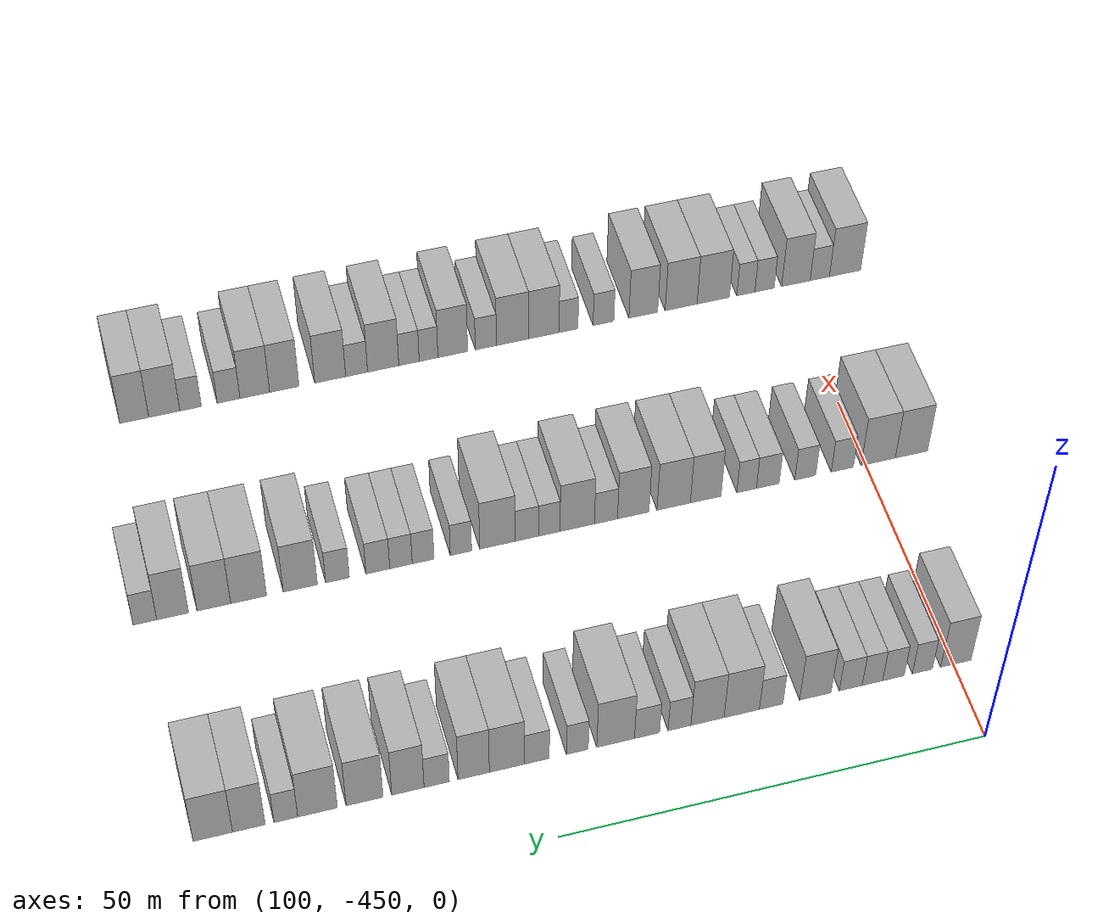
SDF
<sdf version="1.6">
 <world name="default">
  <model name="building_684">
   <static>1</static>
   <pose>115.0000 -450.2752 0 0.000000 0.000000 0.000000</pose>
   <link name="link">
    <pose>0 0 4.50 0 0 0</pose>
    <collision name="collision"><geometry><box><size>10.0000 3.7055 9.0000</size></box></geometry></collision>
    <visual name="visual">
     <cast_shadows>0</cast_shadows>
     <geometry><box><size>10.0000 3.7055 9.0000</size></box></geometry>
     <material>
      <script>
       <uri>model://HANNAS_wall/materials/scripts</uri>
       <uri>model://HANNAS_wall/materials/textures</uri>
       <name>vrc/HANNAS_wall</name>
      </script>
     </material>
    </visual>
   </link>
  </model>
  <model name="building_685">
   <static>1</static>
   <pose>115.0000 -446.1990 0 0.000000 0.000000 0.000000</pose>
   <link name="link">
    <pose>0 0 3.00 0 0 0</pose>
    <collision name="collision"><geometry><box><size>10.0000 2.4470 6.0000</size></box></geometry></collision>
    <visual name="visual">
     <cast_shadows>0</cast_shadows>
     <geometry><box><size>10.0000 2.4470 6.0000</size></box></geometry>
     <material>
      <script>
       <uri>model://HANNAS_wall/materials/scripts</uri>
       <uri>model://HANNAS_wall/materials/textures</uri>
       <name>vrc/HANNAS_wall</name>
      </script>
     </material>
    </visual>
   </link>
  </model>
  <model name="building_686">
   <static>1</static>
   <pose>115.0000 -442.6727 0 0.000000 0.000000 0.000000</pose>
   <link name="link">
    <pose>0 0 3.00 0 0 0</pose>
    <collision name="collision"><geometry><box><size>10.0000 2.6057 6.0000</size></box></geometry></collision>
    <visual name="visual">
     <cast_shadows>0</cast_shadows>
     <geometry><box><size>10.0000 2.6057 6.0000</size></box></geometry>
     <material>
      <script>
       <uri>model://HANNAS_wall/materials/scripts</uri>
       <uri>model://HANNAS_wall/materials/textures</uri>
       <name>vrc/HANNAS_wall</name>
      </script>
     </material>
    </visual>
   </link>
  </model>
  <model name="building_687">
   <static>1</static>
   <pose>115.0000 -440.1237 0 0.000000 0.000000 0.000000</pose>
   <link name="link">
    <pose>0 0 3.00 0 0 0</pose>
    <collision name="collision"><geometry><box><size>10.0000 2.4924 6.0000</size></box></geometry></collision>
    <visual name="visual">
     <cast_shadows>0</cast_shadows>
     <geometry><box><size>10.0000 2.4924 6.0000</size></box></geometry>
     <material>
      <script>
       <uri>model://HANNAS_wall/materials/scripts</uri>
       <uri>model://HANNAS_wall/materials/textures</uri>
       <name>vrc/HANNAS_wall</name>
      </script>
     </material>
    </visual>
   </link>
  </model>
  <model name="building_688">
   <static>1</static>
   <pose>115.0000 -437.4961 0 0.000000 0.000000 0.000000</pose>
   <link name="link">
    <pose>0 0 3.00 0 0 0</pose>
    <collision name="collision"><geometry><box><size>10.0000 2.7628 6.0000</size></box></geometry></collision>
    <visual name="visual">
     <cast_shadows>0</cast_shadows>
     <geometry><box><size>10.0000 2.7628 6.0000</size></box></geometry>
     <material>
      <script>
       <uri>model://HANNAS_wall/materials/scripts</uri>
       <uri>model://HANNAS_wall/materials/textures</uri>
       <name>vrc/HANNAS_wall</name>
      </script>
     </material>
    </visual>
   </link>
  </model>
  <model name="building_689">
   <static>1</static>
   <pose>115.0000 -433.2205 0 0.000000 0.000000 0.000000</pose>
   <link name="link">
    <pose>0 0 4.50 0 0 0</pose>
    <collision name="collision"><geometry><box><size>10.0000 3.7883 9.0000</size></box></geometry></collision>
    <visual name="visual">
     <cast_shadows>0</cast_shadows>
     <geometry><box><size>10.0000 3.7883 9.0000</size></box></geometry>
     <material>
      <script>
       <uri>model://HANNAS_wall/materials/scripts</uri>
       <uri>model://HANNAS_wall/materials/textures</uri>
       <name>vrc/HANNAS_wall</name>
      </script>
     </material>
    </visual>
   </link>
  </model>
  <model name="building_690">
   <static>1</static>
   <pose>115.0000 -427.9189 0 0.000000 0.000000 0.000000</pose>
   <link name="link">
    <pose>0 0 3.00 0 0 0</pose>
    <collision name="collision"><geometry><box><size>10.0000 2.8150 6.0000</size></box></geometry></collision>
    <visual name="visual">
     <cast_shadows>0</cast_shadows>
     <geometry><box><size>10.0000 2.8150 6.0000</size></box></geometry>
     <material>
      <script>
       <uri>model://HANNAS_wall/materials/scripts</uri>
       <uri>model://HANNAS_wall/materials/textures</uri>
       <name>vrc/HANNAS_wall</name>
      </script>
     </material>
    </visual>
   </link>
  </model>
  <model name="building_691">
   <static>1</static>
   <pose>115.0000 -424.4064 0 0.000000 0.000000 0.000000</pose>
   <link name="link">
    <pose>0 0 4.50 0 0 0</pose>
    <collision name="collision"><geometry><box><size>10.0000 4.2099 9.0000</size></box></geometry></collision>
    <visual name="visual">
     <cast_shadows>0</cast_shadows>
     <geometry><box><size>10.0000 4.2099 9.0000</size></box></geometry>
     <material>
      <script>
       <uri>model://HANNAS_wall/materials/scripts</uri>
       <uri>model://HANNAS_wall/materials/textures</uri>
       <name>vrc/HANNAS_wall</name>
      </script>
     </material>
    </visual>
   </link>
  </model>
  <model name="building_692">
   <static>1</static>
   <pose>115.0000 -420.3327 0 0.000000 0.000000 0.000000</pose>
   <link name="link">
    <pose>0 0 4.50 0 0 0</pose>
    <collision name="collision"><geometry><box><size>10.0000 3.9375 9.0000</size></box></geometry></collision>
    <visual name="visual">
     <cast_shadows>0</cast_shadows>
     <geometry><box><size>10.0000 3.9375 9.0000</size></box></geometry>
     <material>
      <script>
       <uri>model://HANNAS_wall/materials/scripts</uri>
       <uri>model://HANNAS_wall/materials/textures</uri>
       <name>vrc/HANNAS_wall</name>
      </script>
     </material>
    </visual>
   </link>
  </model>
  <model name="building_693">
   <static>1</static>
   <pose>115.0000 -417.0097 0 0.000000 0.000000 0.000000</pose>
   <link name="link">
    <pose>0 0 3.00 0 0 0</pose>
    <collision name="collision"><geometry><box><size>10.0000 2.7085 6.0000</size></box></geometry></collision>
    <visual name="visual">
     <cast_shadows>0</cast_shadows>
     <geometry><box><size>10.0000 2.7085 6.0000</size></box></geometry>
     <material>
      <script>
       <uri>model://HANNAS_wall/materials/scripts</uri>
       <uri>model://HANNAS_wall/materials/textures</uri>
       <name>vrc/HANNAS_wall</name>
      </script>
     </material>
    </visual>
   </link>
  </model>
  <model name="building_694">
   <static>1</static>
   <pose>115.0000 -413.1785 0 0.000000 0.000000 0.000000</pose>
   <link name="link">
    <pose>0 0 3.00 0 0 0</pose>
    <collision name="collision"><geometry><box><size>10.0000 2.9539 6.0000</size></box></geometry></collision>
    <visual name="visual">
     <cast_shadows>0</cast_shadows>
     <geometry><box><size>10.0000 2.9539 6.0000</size></box></geometry>
     <material>
      <script>
       <uri>model://HANNAS_wall/materials/scripts</uri>
       <uri>model://HANNAS_wall/materials/textures</uri>
       <name>vrc/HANNAS_wall</name>
      </script>
     </material>
    </visual>
   </link>
  </model>
  <model name="building_695">
   <static>1</static>
   <pose>115.0000 -409.4849 0 0.000000 0.000000 0.000000</pose>
   <link name="link">
    <pose>0 0 4.50 0 0 0</pose>
    <collision name="collision"><geometry><box><size>10.0000 4.4334 9.0000</size></box></geometry></collision>
    <visual name="visual">
     <cast_shadows>0</cast_shadows>
     <geometry><box><size>10.0000 4.4334 9.0000</size></box></geometry>
     <material>
      <script>
       <uri>model://HANNAS_wall/materials/scripts</uri>
       <uri>model://HANNAS_wall/materials/textures</uri>
       <name>vrc/HANNAS_wall</name>
      </script>
     </material>
    </visual>
   </link>
  </model>
  <model name="building_696">
   <static>1</static>
   <pose>115.0000 -404.9934 0 0.000000 0.000000 0.000000</pose>
   <link name="link">
    <pose>0 0 3.00 0 0 0</pose>
    <collision name="collision"><geometry><box><size>10.0000 2.5496 6.0000</size></box></geometry></collision>
    <visual name="visual">
     <cast_shadows>0</cast_shadows>
     <geometry><box><size>10.0000 2.5496 6.0000</size></box></geometry>
     <material>
      <script>
       <uri>model://HANNAS_wall/materials/scripts</uri>
       <uri>model://HANNAS_wall/materials/textures</uri>
       <name>vrc/HANNAS_wall</name>
      </script>
     </material>
    </visual>
   </link>
  </model>
  <model name="building_697">
   <static>1</static>
   <pose>115.0000 -400.2592 0 0.000000 0.000000 0.000000</pose>
   <link name="link">
    <pose>0 0 3.00 0 0 0</pose>
    <collision name="collision"><geometry><box><size>10.0000 2.9187 6.0000</size></box></geometry></collision>
    <visual name="visual">
     <cast_shadows>0</cast_shadows>
     <geometry><box><size>10.0000 2.9187 6.0000</size></box></geometry>
     <material>
      <script>
       <uri>model://HANNAS_wall/materials/scripts</uri>
       <uri>model://HANNAS_wall/materials/textures</uri>
       <name>vrc/HANNAS_wall</name>
      </script>
     </material>
    </visual>
   </link>
  </model>
  <model name="building_698">
   <static>1</static>
   <pose>115.0000 -396.7909 0 0.000000 0.000000 0.000000</pose>
   <link name="link">
    <pose>0 0 4.50 0 0 0</pose>
    <collision name="collision"><geometry><box><size>10.0000 4.0179 9.0000</size></box></geometry></collision>
    <visual name="visual">
     <cast_shadows>0</cast_shadows>
     <geometry><box><size>10.0000 4.0179 9.0000</size></box></geometry>
     <material>
      <script>
       <uri>model://HANNAS_wall/materials/scripts</uri>
       <uri>model://HANNAS_wall/materials/textures</uri>
       <name>vrc/HANNAS_wall</name>
      </script>
     </material>
    </visual>
   </link>
  </model>
  <model name="building_699">
   <static>1</static>
   <pose>115.0000 -392.9753 0 0.000000 0.000000 0.000000</pose>
   <link name="link">
    <pose>0 0 4.50 0 0 0</pose>
    <collision name="collision"><geometry><box><size>10.0000 3.6133 9.0000</size></box></geometry></collision>
    <visual name="visual">
     <cast_shadows>0</cast_shadows>
     <geometry><box><size>10.0000 3.6133 9.0000</size></box></geometry>
     <material>
      <script>
       <uri>model://HANNAS_wall/materials/scripts</uri>
       <uri>model://HANNAS_wall/materials/textures</uri>
       <name>vrc/HANNAS_wall</name>
      </script>
     </material>
    </visual>
   </link>
  </model>
  <model name="building_700">
   <static>1</static>
   <pose>115.0000 -388.7188 0 0.000000 0.000000 0.000000</pose>
   <link name="link">
    <pose>0 0 3.00 0 0 0</pose>
    <collision name="collision"><geometry><box><size>10.0000 2.8997 6.0000</size></box></geometry></collision>
    <visual name="visual">
     <cast_shadows>0</cast_shadows>
     <geometry><box><size>10.0000 2.8997 6.0000</size></box></geometry>
     <material>
      <script>
       <uri>model://HANNAS_wall/materials/scripts</uri>
       <uri>model://HANNAS_wall/materials/textures</uri>
       <name>vrc/HANNAS_wall</name>
      </script>
     </material>
    </visual>
   </link>
  </model>
  <model name="building_701">
   <static>1</static>
   <pose>115.0000 -385.4212 0 0.000000 0.000000 0.000000</pose>
   <link name="link">
    <pose>0 0 4.50 0 0 0</pose>
    <collision name="collision"><geometry><box><size>10.0000 3.6955 9.0000</size></box></geometry></collision>
    <visual name="visual">
     <cast_shadows>0</cast_shadows>
     <geometry><box><size>10.0000 3.6955 9.0000</size></box></geometry>
     <material>
      <script>
       <uri>model://HANNAS_wall/materials/scripts</uri>
       <uri>model://HANNAS_wall/materials/textures</uri>
       <name>vrc/HANNAS_wall</name>
      </script>
     </material>
    </visual>
   </link>
  </model>
  <model name="building_702">
   <static>1</static>
   <pose>115.0000 -380.4778 0 0.000000 0.000000 0.000000</pose>
   <link name="link">
    <pose>0 0 4.50 0 0 0</pose>
    <collision name="collision"><geometry><box><size>10.0000 4.1914 9.0000</size></box></geometry></collision>
    <visual name="visual">
     <cast_shadows>0</cast_shadows>
     <geometry><box><size>10.0000 4.1914 9.0000</size></box></geometry>
     <material>
      <script>
       <uri>model://HANNAS_wall/materials/scripts</uri>
       <uri>model://HANNAS_wall/materials/textures</uri>
       <name>vrc/HANNAS_wall</name>
      </script>
     </material>
    </visual>
   </link>
  </model>
  <model name="building_703">
   <static>1</static>
   <pose>115.0000 -375.1444 0 0.000000 0.000000 0.000000</pose>
   <link name="link">
    <pose>0 0 4.50 0 0 0</pose>
    <collision name="collision"><geometry><box><size>10.0000 4.4753 9.0000</size></box></geometry></collision>
    <visual name="visual">
     <cast_shadows>0</cast_shadows>
     <geometry><box><size>10.0000 4.4753 9.0000</size></box></geometry>
     <material>
      <script>
       <uri>model://HANNAS_wall/materials/scripts</uri>
       <uri>model://HANNAS_wall/materials/textures</uri>
       <name>vrc/HANNAS_wall</name>
      </script>
     </material>
    </visual>
   </link>
  </model>
  <model name="building_704">
   <static>1</static>
   <pose>115.0000 -371.5670 0 0.000000 0.000000 0.000000</pose>
   <link name="link">
    <pose>0 0 3.00 0 0 0</pose>
    <collision name="collision"><geometry><box><size>10.0000 2.6796 6.0000</size></box></geometry></collision>
    <visual name="visual">
     <cast_shadows>0</cast_shadows>
     <geometry><box><size>10.0000 2.6796 6.0000</size></box></geometry>
     <material>
      <script>
       <uri>model://HANNAS_wall/materials/scripts</uri>
       <uri>model://HANNAS_wall/materials/textures</uri>
       <name>vrc/HANNAS_wall</name>
      </script>
     </material>
    </visual>
   </link>
  </model>
  <model name="building_705">
   <static>1</static>
   <pose>115.0000 -367.4008 0 0.000000 0.000000 0.000000</pose>
   <link name="link">
    <pose>0 0 4.50 0 0 0</pose>
    <collision name="collision"><geometry><box><size>10.0000 3.6528 9.0000</size></box></geometry></collision>
    <visual name="visual">
     <cast_shadows>0</cast_shadows>
     <geometry><box><size>10.0000 3.6528 9.0000</size></box></geometry>
     <material>
      <script>
       <uri>model://HANNAS_wall/materials/scripts</uri>
       <uri>model://HANNAS_wall/materials/textures</uri>
       <name>vrc/HANNAS_wall</name>
      </script>
     </material>
    </visual>
   </link>
  </model>
  <model name="building_706">
   <static>1</static>
   <pose>115.0000 -363.3722 0 0.000000 0.000000 0.000000</pose>
   <link name="link">
    <pose>0 0 4.50 0 0 0</pose>
    <collision name="collision"><geometry><box><size>10.0000 4.4044 9.0000</size></box></geometry></collision>
    <visual name="visual">
     <cast_shadows>0</cast_shadows>
     <geometry><box><size>10.0000 4.4044 9.0000</size></box></geometry>
     <material>
      <script>
       <uri>model://HANNAS_wall/materials/scripts</uri>
       <uri>model://HANNAS_wall/materials/textures</uri>
       <name>vrc/HANNAS_wall</name>
      </script>
     </material>
    </visual>
   </link>
  </model>
  <model name="building_909">
   <static>1</static>
   <pose>145.0000 -455.9161 0 0.000000 0.000000 0.000000</pose>
   <link name="link">
    <pose>0 0 4.50 0 0 0</pose>
    <collision name="collision"><geometry><box><size>10.0000 4.1678 9.0000</size></box></geometry></collision>
    <visual name="visual">
     <cast_shadows>0</cast_shadows>
     <geometry><box><size>10.0000 4.1678 9.0000</size></box></geometry>
     <material>
      <script>
       <uri>model://HANNAS_wall/materials/scripts</uri>
       <uri>model://HANNAS_wall/materials/textures</uri>
       <name>vrc/HANNAS_wall</name>
      </script>
     </material>
    </visual>
   </link>
  </model>
  <model name="building_910">
   <static>1</static>
   <pose>145.0000 -451.6194 0 0.000000 0.000000 0.000000</pose>
   <link name="link">
    <pose>0 0 4.50 0 0 0</pose>
    <collision name="collision"><geometry><box><size>10.0000 4.4256 9.0000</size></box></geometry></collision>
    <visual name="visual">
     <cast_shadows>0</cast_shadows>
     <geometry><box><size>10.0000 4.4256 9.0000</size></box></geometry>
     <material>
      <script>
       <uri>model://HANNAS_wall/materials/scripts</uri>
       <uri>model://HANNAS_wall/materials/textures</uri>
       <name>vrc/HANNAS_wall</name>
      </script>
     </material>
    </visual>
   </link>
  </model>
  <model name="building_911">
   <static>1</static>
   <pose>145.0000 -446.9853 0 0.000000 0.000000 0.000000</pose>
   <link name="link">
    <pose>0 0 3.00 0 0 0</pose>
    <collision name="collision"><geometry><box><size>10.0000 2.8426 6.0000</size></box></geometry></collision>
    <visual name="visual">
     <cast_shadows>0</cast_shadows>
     <geometry><box><size>10.0000 2.8426 6.0000</size></box></geometry>
     <material>
      <script>
       <uri>model://HANNAS_wall/materials/scripts</uri>
       <uri>model://HANNAS_wall/materials/textures</uri>
       <name>vrc/HANNAS_wall</name>
      </script>
     </material>
    </visual>
   </link>
  </model>
  <model name="building_912">
   <static>1</static>
   <pose>145.0000 -442.2330 0 0.000000 0.000000 0.000000</pose>
   <link name="link">
    <pose>0 0 3.00 0 0 0</pose>
    <collision name="collision"><geometry><box><size>10.0000 2.6619 6.0000</size></box></geometry></collision>
    <visual name="visual">
     <cast_shadows>0</cast_shadows>
     <geometry><box><size>10.0000 2.6619 6.0000</size></box></geometry>
     <material>
      <script>
       <uri>model://HANNAS_wall/materials/scripts</uri>
       <uri>model://HANNAS_wall/materials/textures</uri>
       <name>vrc/HANNAS_wall</name>
      </script>
     </material>
    </visual>
   </link>
  </model>
  <model name="building_913">
   <static>1</static>
   <pose>145.0000 -437.4586 0 0.000000 0.000000 0.000000</pose>
   <link name="link">
    <pose>0 0 3.00 0 0 0</pose>
    <collision name="collision"><geometry><box><size>10.0000 2.8869 6.0000</size></box></geometry></collision>
    <visual name="visual">
     <cast_shadows>0</cast_shadows>
     <geometry><box><size>10.0000 2.8869 6.0000</size></box></geometry>
     <material>
      <script>
       <uri>model://HANNAS_wall/materials/scripts</uri>
       <uri>model://HANNAS_wall/materials/textures</uri>
       <name>vrc/HANNAS_wall</name>
      </script>
     </material>
    </visual>
   </link>
  </model>
  <model name="building_914">
   <static>1</static>
   <pose>145.0000 -434.7707 0 0.000000 0.000000 0.000000</pose>
   <link name="link">
    <pose>0 0 3.00 0 0 0</pose>
    <collision name="collision"><geometry><box><size>10.0000 2.4888 6.0000</size></box></geometry></collision>
    <visual name="visual">
     <cast_shadows>0</cast_shadows>
     <geometry><box><size>10.0000 2.4888 6.0000</size></box></geometry>
     <material>
      <script>
       <uri>model://HANNAS_wall/materials/scripts</uri>
       <uri>model://HANNAS_wall/materials/textures</uri>
       <name>vrc/HANNAS_wall</name>
      </script>
     </material>
    </visual>
   </link>
  </model>
  <model name="building_915">
   <static>1</static>
   <pose>145.0000 -429.5897 0 0.000000 0.000000 0.000000</pose>
   <link name="link">
    <pose>0 0 4.50 0 0 0</pose>
    <collision name="collision"><geometry><box><size>10.0000 3.8732 9.0000</size></box></geometry></collision>
    <visual name="visual">
     <cast_shadows>0</cast_shadows>
     <geometry><box><size>10.0000 3.8732 9.0000</size></box></geometry>
     <material>
      <script>
       <uri>model://HANNAS_wall/materials/scripts</uri>
       <uri>model://HANNAS_wall/materials/textures</uri>
       <name>vrc/HANNAS_wall</name>
      </script>
     </material>
    </visual>
   </link>
  </model>
  <model name="building_916">
   <static>1</static>
   <pose>145.0000 -425.5544 0 0.000000 0.000000 0.000000</pose>
   <link name="link">
    <pose>0 0 4.50 0 0 0</pose>
    <collision name="collision"><geometry><box><size>10.0000 4.1975 9.0000</size></box></geometry></collision>
    <visual name="visual">
     <cast_shadows>0</cast_shadows>
     <geometry><box><size>10.0000 4.1975 9.0000</size></box></geometry>
     <material>
      <script>
       <uri>model://HANNAS_wall/materials/scripts</uri>
       <uri>model://HANNAS_wall/materials/textures</uri>
       <name>vrc/HANNAS_wall</name>
      </script>
     </material>
    </visual>
   </link>
  </model>
  <model name="building_917">
   <static>1</static>
   <pose>145.0000 -420.4815 0 0.000000 0.000000 0.000000</pose>
   <link name="link">
    <pose>0 0 4.50 0 0 0</pose>
    <collision name="collision"><geometry><box><size>10.0000 3.9483 9.0000</size></box></geometry></collision>
    <visual name="visual">
     <cast_shadows>0</cast_shadows>
     <geometry><box><size>10.0000 3.9483 9.0000</size></box></geometry>
     <material>
      <script>
       <uri>model://HANNAS_wall/materials/scripts</uri>
       <uri>model://HANNAS_wall/materials/textures</uri>
       <name>vrc/HANNAS_wall</name>
      </script>
     </material>
    </visual>
   </link>
  </model>
  <model name="building_918">
   <static>1</static>
   <pose>145.0000 -417.0658 0 0.000000 0.000000 0.000000</pose>
   <link name="link">
    <pose>0 0 3.00 0 0 0</pose>
    <collision name="collision"><geometry><box><size>10.0000 2.8830 6.0000</size></box></geometry></collision>
    <visual name="visual">
     <cast_shadows>0</cast_shadows>
     <geometry><box><size>10.0000 2.8830 6.0000</size></box></geometry>
     <material>
      <script>
       <uri>model://HANNAS_wall/materials/scripts</uri>
       <uri>model://HANNAS_wall/materials/textures</uri>
       <name>vrc/HANNAS_wall</name>
      </script>
     </material>
    </visual>
   </link>
  </model>
  <model name="building_919">
   <static>1</static>
   <pose>145.0000 -413.4852 0 0.000000 0.000000 0.000000</pose>
   <link name="link">
    <pose>0 0 4.50 0 0 0</pose>
    <collision name="collision"><geometry><box><size>10.0000 4.2783 9.0000</size></box></geometry></collision>
    <visual name="visual">
     <cast_shadows>0</cast_shadows>
     <geometry><box><size>10.0000 4.2783 9.0000</size></box></geometry>
     <material>
      <script>
       <uri>model://HANNAS_wall/materials/scripts</uri>
       <uri>model://HANNAS_wall/materials/textures</uri>
       <name>vrc/HANNAS_wall</name>
      </script>
     </material>
    </visual>
   </link>
  </model>
  <model name="building_920">
   <static>1</static>
   <pose>145.0000 -410.0223 0 0.000000 0.000000 0.000000</pose>
   <link name="link">
    <pose>0 0 3.00 0 0 0</pose>
    <collision name="collision"><geometry><box><size>10.0000 2.6476 6.0000</size></box></geometry></collision>
    <visual name="visual">
     <cast_shadows>0</cast_shadows>
     <geometry><box><size>10.0000 2.6476 6.0000</size></box></geometry>
     <material>
      <script>
       <uri>model://HANNAS_wall/materials/scripts</uri>
       <uri>model://HANNAS_wall/materials/textures</uri>
       <name>vrc/HANNAS_wall</name>
      </script>
     </material>
    </visual>
   </link>
  </model>
  <model name="building_921">
   <static>1</static>
   <pose>145.0000 -407.2623 0 0.000000 0.000000 0.000000</pose>
   <link name="link">
    <pose>0 0 3.00 0 0 0</pose>
    <collision name="collision"><geometry><box><size>10.0000 2.8725 6.0000</size></box></geometry></collision>
    <visual name="visual">
     <cast_shadows>0</cast_shadows>
     <geometry><box><size>10.0000 2.8725 6.0000</size></box></geometry>
     <material>
      <script>
       <uri>model://HANNAS_wall/materials/scripts</uri>
       <uri>model://HANNAS_wall/materials/textures</uri>
       <name>vrc/HANNAS_wall</name>
      </script>
     </material>
    </visual>
   </link>
  </model>
  <model name="building_922">
   <static>1</static>
   <pose>145.0000 -403.6412 0 0.000000 0.000000 0.000000</pose>
   <link name="link">
    <pose>0 0 4.50 0 0 0</pose>
    <collision name="collision"><geometry><box><size>10.0000 4.3696 9.0000</size></box></geometry></collision>
    <visual name="visual">
     <cast_shadows>0</cast_shadows>
     <geometry><box><size>10.0000 4.3696 9.0000</size></box></geometry>
     <material>
      <script>
       <uri>model://HANNAS_wall/materials/scripts</uri>
       <uri>model://HANNAS_wall/materials/textures</uri>
       <name>vrc/HANNAS_wall</name>
      </script>
     </material>
    </visual>
   </link>
  </model>
  <model name="building_923">
   <static>1</static>
   <pose>145.0000 -399.1564 0 0.000000 0.000000 0.000000</pose>
   <link name="link">
    <pose>0 0 3.00 0 0 0</pose>
    <collision name="collision"><geometry><box><size>10.0000 2.6000 6.0000</size></box></geometry></collision>
    <visual name="visual">
     <cast_shadows>0</cast_shadows>
     <geometry><box><size>10.0000 2.6000 6.0000</size></box></geometry>
     <material>
      <script>
       <uri>model://HANNAS_wall/materials/scripts</uri>
       <uri>model://HANNAS_wall/materials/textures</uri>
       <name>vrc/HANNAS_wall</name>
      </script>
     </material>
    </visual>
   </link>
  </model>
  <model name="building_924">
   <static>1</static>
   <pose>145.0000 -394.5337 0 0.000000 0.000000 0.000000</pose>
   <link name="link">
    <pose>0 0 3.00 0 0 0</pose>
    <collision name="collision"><geometry><box><size>10.0000 2.6454 6.0000</size></box></geometry></collision>
    <visual name="visual">
     <cast_shadows>0</cast_shadows>
     <geometry><box><size>10.0000 2.6454 6.0000</size></box></geometry>
     <material>
      <script>
       <uri>model://HANNAS_wall/materials/scripts</uri>
       <uri>model://HANNAS_wall/materials/textures</uri>
       <name>vrc/HANNAS_wall</name>
      </script>
     </material>
    </visual>
   </link>
  </model>
  <model name="building_925">
   <static>1</static>
   <pose>145.0000 -391.8441 0 0.000000 0.000000 0.000000</pose>
   <link name="link">
    <pose>0 0 3.00 0 0 0</pose>
    <collision name="collision"><geometry><box><size>10.0000 2.7337 6.0000</size></box></geometry></collision>
    <visual name="visual">
     <cast_shadows>0</cast_shadows>
     <geometry><box><size>10.0000 2.7337 6.0000</size></box></geometry>
     <material>
      <script>
       <uri>model://HANNAS_wall/materials/scripts</uri>
       <uri>model://HANNAS_wall/materials/textures</uri>
       <name>vrc/HANNAS_wall</name>
      </script>
     </material>
    </visual>
   </link>
  </model>
  <model name="building_926">
   <static>1</static>
   <pose>145.0000 -389.0325 0 0.000000 0.000000 0.000000</pose>
   <link name="link">
    <pose>0 0 3.00 0 0 0</pose>
    <collision name="collision"><geometry><box><size>10.0000 2.8896 6.0000</size></box></geometry></collision>
    <visual name="visual">
     <cast_shadows>0</cast_shadows>
     <geometry><box><size>10.0000 2.8896 6.0000</size></box></geometry>
     <material>
      <script>
       <uri>model://HANNAS_wall/materials/scripts</uri>
       <uri>model://HANNAS_wall/materials/textures</uri>
       <name>vrc/HANNAS_wall</name>
      </script>
     </material>
    </visual>
   </link>
  </model>
  <model name="building_927">
   <static>1</static>
   <pose>145.0000 -384.1581 0 0.000000 0.000000 0.000000</pose>
   <link name="link">
    <pose>0 0 3.00 0 0 0</pose>
    <collision name="collision"><geometry><box><size>10.0000 2.8592 6.0000</size></box></geometry></collision>
    <visual name="visual">
     <cast_shadows>0</cast_shadows>
     <geometry><box><size>10.0000 2.8592 6.0000</size></box></geometry>
     <material>
      <script>
       <uri>model://HANNAS_wall/materials/scripts</uri>
       <uri>model://HANNAS_wall/materials/textures</uri>
       <name>vrc/HANNAS_wall</name>
      </script>
     </material>
    </visual>
   </link>
  </model>
  <model name="building_928">
   <static>1</static>
   <pose>145.0000 -379.6830 0 0.000000 0.000000 0.000000</pose>
   <link name="link">
    <pose>0 0 4.50 0 0 0</pose>
    <collision name="collision"><geometry><box><size>10.0000 4.0910 9.0000</size></box></geometry></collision>
    <visual name="visual">
     <cast_shadows>0</cast_shadows>
     <geometry><box><size>10.0000 4.0910 9.0000</size></box></geometry>
     <material>
      <script>
       <uri>model://HANNAS_wall/materials/scripts</uri>
       <uri>model://HANNAS_wall/materials/textures</uri>
       <name>vrc/HANNAS_wall</name>
      </script>
     </material>
    </visual>
   </link>
  </model>
  <model name="building_929">
   <static>1</static>
   <pose>145.0000 -373.4984 0 0.000000 0.000000 0.000000</pose>
   <link name="link">
    <pose>0 0 4.50 0 0 0</pose>
    <collision name="collision"><geometry><box><size>10.0000 4.2782 9.0000</size></box></geometry></collision>
    <visual name="visual">
     <cast_shadows>0</cast_shadows>
     <geometry><box><size>10.0000 4.2782 9.0000</size></box></geometry>
     <material>
      <script>
       <uri>model://HANNAS_wall/materials/scripts</uri>
       <uri>model://HANNAS_wall/materials/textures</uri>
       <name>vrc/HANNAS_wall</name>
      </script>
     </material>
    </visual>
   </link>
  </model>
  <model name="building_930">
   <static>1</static>
   <pose>145.0000 -369.3574 0 0.000000 0.000000 0.000000</pose>
   <link name="link">
    <pose>0 0 4.50 0 0 0</pose>
    <collision name="collision"><geometry><box><size>10.0000 4.0038 9.0000</size></box></geometry></collision>
    <visual name="visual">
     <cast_shadows>0</cast_shadows>
     <geometry><box><size>10.0000 4.0038 9.0000</size></box></geometry>
     <material>
      <script>
       <uri>model://HANNAS_wall/materials/scripts</uri>
       <uri>model://HANNAS_wall/materials/textures</uri>
       <name>vrc/HANNAS_wall</name>
      </script>
     </material>
    </visual>
   </link>
  </model>
  <model name="building_931">
   <static>1</static>
   <pose>145.0000 -364.4760 0 0.000000 0.000000 0.000000</pose>
   <link name="link">
    <pose>0 0 4.50 0 0 0</pose>
    <collision name="collision"><geometry><box><size>10.0000 3.7590 9.0000</size></box></geometry></collision>
    <visual name="visual">
     <cast_shadows>0</cast_shadows>
     <geometry><box><size>10.0000 3.7590 9.0000</size></box></geometry>
     <material>
      <script>
       <uri>model://HANNAS_wall/materials/scripts</uri>
       <uri>model://HANNAS_wall/materials/textures</uri>
       <name>vrc/HANNAS_wall</name>
      </script>
     </material>
    </visual>
   </link>
  </model>
  <model name="building_932">
   <static>1</static>
   <pose>145.0000 -361.2015 0 0.000000 0.000000 0.000000</pose>
   <link name="link">
    <pose>0 0 3.00 0 0 0</pose>
    <collision name="collision"><geometry><box><size>10.0000 2.7901 6.0000</size></box></geometry></collision>
    <visual name="visual">
     <cast_shadows>0</cast_shadows>
     <geometry><box><size>10.0000 2.7901 6.0000</size></box></geometry>
     <material>
      <script>
       <uri>model://HANNAS_wall/materials/scripts</uri>
       <uri>model://HANNAS_wall/materials/textures</uri>
       <name>vrc/HANNAS_wall</name>
      </script>
     </material>
    </visual>
   </link>
  </model>
  <model name="building_1141">
   <static>1</static>
   <pose>175.0000 -457.8740 0 0.000000 0.000000 0.000000</pose>
   <link name="link">
    <pose>0 0 4.50 0 0 0</pose>
    <collision name="collision"><geometry><box><size>10.0000 4.2520 9.0000</size></box></geometry></collision>
    <visual name="visual">
     <cast_shadows>0</cast_shadows>
     <geometry><box><size>10.0000 4.2520 9.0000</size></box></geometry>
     <material>
      <script>
       <uri>model://HANNAS_wall/materials/scripts</uri>
       <uri>model://HANNAS_wall/materials/textures</uri>
       <name>vrc/HANNAS_wall</name>
      </script>
     </material>
    </visual>
   </link>
  </model>
  <model name="building_1142">
   <static>1</static>
   <pose>175.0000 -454.4429 0 0.000000 0.000000 0.000000</pose>
   <link name="link">
    <pose>0 0 3.00 0 0 0</pose>
    <collision name="collision"><geometry><box><size>10.0000 2.6101 6.0000</size></box></geometry></collision>
    <visual name="visual">
     <cast_shadows>0</cast_shadows>
     <geometry><box><size>10.0000 2.6101 6.0000</size></box></geometry>
     <material>
      <script>
       <uri>model://HANNAS_wall/materials/scripts</uri>
       <uri>model://HANNAS_wall/materials/textures</uri>
       <name>vrc/HANNAS_wall</name>
      </script>
     </material>
    </visual>
   </link>
  </model>
  <model name="building_1143">
   <static>1</static>
   <pose>175.0000 -451.2039 0 0.000000 0.000000 0.000000</pose>
   <link name="link">
    <pose>0 0 4.50 0 0 0</pose>
    <collision name="collision"><geometry><box><size>10.0000 3.8679 9.0000</size></box></geometry></collision>
    <visual name="visual">
     <cast_shadows>0</cast_shadows>
     <geometry><box><size>10.0000 3.8679 9.0000</size></box></geometry>
     <material>
      <script>
       <uri>model://HANNAS_wall/materials/scripts</uri>
       <uri>model://HANNAS_wall/materials/textures</uri>
       <name>vrc/HANNAS_wall</name>
      </script>
     </material>
    </visual>
   </link>
  </model>
  <model name="building_1144">
   <static>1</static>
   <pose>175.0000 -446.9698 0 0.000000 0.000000 0.000000</pose>
   <link name="link">
    <pose>0 0 3.00 0 0 0</pose>
    <collision name="collision"><geometry><box><size>10.0000 2.6002 6.0000</size></box></geometry></collision>
    <visual name="visual">
     <cast_shadows>0</cast_shadows>
     <geometry><box><size>10.0000 2.6002 6.0000</size></box></geometry>
     <material>
      <script>
       <uri>model://HANNAS_wall/materials/scripts</uri>
       <uri>model://HANNAS_wall/materials/textures</uri>
       <name>vrc/HANNAS_wall</name>
      </script>
     </material>
    </visual>
   </link>
  </model>
  <model name="building_1145">
   <static>1</static>
   <pose>175.0000 -444.4525 0 0.000000 0.000000 0.000000</pose>
   <link name="link">
    <pose>0 0 3.00 0 0 0</pose>
    <collision name="collision"><geometry><box><size>10.0000 2.4344 6.0000</size></box></geometry></collision>
    <visual name="visual">
     <cast_shadows>0</cast_shadows>
     <geometry><box><size>10.0000 2.4344 6.0000</size></box></geometry>
     <material>
      <script>
       <uri>model://HANNAS_wall/materials/scripts</uri>
       <uri>model://HANNAS_wall/materials/textures</uri>
       <name>vrc/HANNAS_wall</name>
      </script>
     </material>
    </visual>
   </link>
  </model>
  <model name="building_1146">
   <static>1</static>
   <pose>175.0000 -440.0781 0 0.000000 0.000000 0.000000</pose>
   <link name="link">
    <pose>0 0 4.50 0 0 0</pose>
    <collision name="collision"><geometry><box><size>10.0000 4.3143 9.0000</size></box></geometry></collision>
    <visual name="visual">
     <cast_shadows>0</cast_shadows>
     <geometry><box><size>10.0000 4.3143 9.0000</size></box></geometry>
     <material>
      <script>
       <uri>model://HANNAS_wall/materials/scripts</uri>
       <uri>model://HANNAS_wall/materials/textures</uri>
       <name>vrc/HANNAS_wall</name>
      </script>
     </material>
    </visual>
   </link>
  </model>
  <model name="building_1147">
   <static>1</static>
   <pose>175.0000 -435.7867 0 0.000000 0.000000 0.000000</pose>
   <link name="link">
    <pose>0 0 4.50 0 0 0</pose>
    <collision name="collision"><geometry><box><size>10.0000 4.2686 9.0000</size></box></geometry></collision>
    <visual name="visual">
     <cast_shadows>0</cast_shadows>
     <geometry><box><size>10.0000 4.2686 9.0000</size></box></geometry>
     <material>
      <script>
       <uri>model://HANNAS_wall/materials/scripts</uri>
       <uri>model://HANNAS_wall/materials/textures</uri>
       <name>vrc/HANNAS_wall</name>
      </script>
     </material>
    </visual>
   </link>
  </model>
  <model name="building_1148">
   <static>1</static>
   <pose>175.0000 -430.7459 0 0.000000 0.000000 0.000000</pose>
   <link name="link">
    <pose>0 0 4.50 0 0 0</pose>
    <collision name="collision"><geometry><box><size>10.0000 3.8131 9.0000</size></box></geometry></collision>
    <visual name="visual">
     <cast_shadows>0</cast_shadows>
     <geometry><box><size>10.0000 3.8131 9.0000</size></box></geometry>
     <material>
      <script>
       <uri>model://HANNAS_wall/materials/scripts</uri>
       <uri>model://HANNAS_wall/materials/textures</uri>
       <name>vrc/HANNAS_wall</name>
      </script>
     </material>
    </visual>
   </link>
  </model>
  <model name="building_1149">
   <static>1</static>
   <pose>175.0000 -425.4710 0 0.000000 0.000000 0.000000</pose>
   <link name="link">
    <pose>0 0 3.00 0 0 0</pose>
    <collision name="collision"><geometry><box><size>10.0000 2.7368 6.0000</size></box></geometry></collision>
    <visual name="visual">
     <cast_shadows>0</cast_shadows>
     <geometry><box><size>10.0000 2.7368 6.0000</size></box></geometry>
     <material>
      <script>
       <uri>model://HANNAS_wall/materials/scripts</uri>
       <uri>model://HANNAS_wall/materials/textures</uri>
       <name>vrc/HANNAS_wall</name>
      </script>
     </material>
    </visual>
   </link>
  </model>
  <model name="building_1150">
   <static>1</static>
   <pose>175.0000 -420.8570 0 0.000000 0.000000 0.000000</pose>
   <link name="link">
    <pose>0 0 3.00 0 0 0</pose>
    <collision name="collision"><geometry><box><size>10.0000 2.4911 6.0000</size></box></geometry></collision>
    <visual name="visual">
     <cast_shadows>0</cast_shadows>
     <geometry><box><size>10.0000 2.4911 6.0000</size></box></geometry>
     <material>
      <script>
       <uri>model://HANNAS_wall/materials/scripts</uri>
       <uri>model://HANNAS_wall/materials/textures</uri>
       <name>vrc/HANNAS_wall</name>
      </script>
     </material>
    </visual>
   </link>
  </model>
  <model name="building_1151">
   <static>1</static>
   <pose>175.0000 -417.6090 0 0.000000 0.000000 0.000000</pose>
   <link name="link">
    <pose>0 0 4.50 0 0 0</pose>
    <collision name="collision"><geometry><box><size>10.0000 4.0050 9.0000</size></box></geometry></collision>
    <visual name="visual">
     <cast_shadows>0</cast_shadows>
     <geometry><box><size>10.0000 4.0050 9.0000</size></box></geometry>
     <material>
      <script>
       <uri>model://HANNAS_wall/materials/scripts</uri>
       <uri>model://HANNAS_wall/materials/textures</uri>
       <name>vrc/HANNAS_wall</name>
      </script>
     </material>
    </visual>
   </link>
  </model>
  <model name="building_1152">
   <static>1</static>
   <pose>175.0000 -413.5118 0 0.000000 0.000000 0.000000</pose>
   <link name="link">
    <pose>0 0 4.50 0 0 0</pose>
    <collision name="collision"><geometry><box><size>10.0000 4.1893 9.0000</size></box></geometry></collision>
    <visual name="visual">
     <cast_shadows>0</cast_shadows>
     <geometry><box><size>10.0000 4.1893 9.0000</size></box></geometry>
     <material>
      <script>
       <uri>model://HANNAS_wall/materials/scripts</uri>
       <uri>model://HANNAS_wall/materials/textures</uri>
       <name>vrc/HANNAS_wall</name>
      </script>
     </material>
    </visual>
   </link>
  </model>
  <model name="building_1153">
   <static>1</static>
   <pose>175.0000 -410.0431 0 0.000000 0.000000 0.000000</pose>
   <link name="link">
    <pose>0 0 3.00 0 0 0</pose>
    <collision name="collision"><geometry><box><size>10.0000 2.7482 6.0000</size></box></geometry></collision>
    <visual name="visual">
     <cast_shadows>0</cast_shadows>
     <geometry><box><size>10.0000 2.7482 6.0000</size></box></geometry>
     <material>
      <script>
       <uri>model://HANNAS_wall/materials/scripts</uri>
       <uri>model://HANNAS_wall/materials/textures</uri>
       <name>vrc/HANNAS_wall</name>
      </script>
     </material>
    </visual>
   </link>
  </model>
  <model name="building_1154">
   <static>1</static>
   <pose>175.0000 -405.7466 0 0.000000 0.000000 0.000000</pose>
   <link name="link">
    <pose>0 0 4.50 0 0 0</pose>
    <collision name="collision"><geometry><box><size>10.0000 3.8447 9.0000</size></box></geometry></collision>
    <visual name="visual">
     <cast_shadows>0</cast_shadows>
     <geometry><box><size>10.0000 3.8447 9.0000</size></box></geometry>
     <material>
      <script>
       <uri>model://HANNAS_wall/materials/scripts</uri>
       <uri>model://HANNAS_wall/materials/textures</uri>
       <name>vrc/HANNAS_wall</name>
      </script>
     </material>
    </visual>
   </link>
  </model>
  <model name="building_1155">
   <static>1</static>
   <pose>175.0000 -402.6170 0 0.000000 0.000000 0.000000</pose>
   <link name="link">
    <pose>0 0 3.00 0 0 0</pose>
    <collision name="collision"><geometry><box><size>10.0000 2.4145 6.0000</size></box></geometry></collision>
    <visual name="visual">
     <cast_shadows>0</cast_shadows>
     <geometry><box><size>10.0000 2.4145 6.0000</size></box></geometry>
     <material>
      <script>
       <uri>model://HANNAS_wall/materials/scripts</uri>
       <uri>model://HANNAS_wall/materials/textures</uri>
       <name>vrc/HANNAS_wall</name>
      </script>
     </material>
    </visual>
   </link>
  </model>
  <model name="building_1156">
   <static>1</static>
   <pose>175.0000 -400.0957 0 0.000000 0.000000 0.000000</pose>
   <link name="link">
    <pose>0 0 3.00 0 0 0</pose>
    <collision name="collision"><geometry><box><size>10.0000 2.6281 6.0000</size></box></geometry></collision>
    <visual name="visual">
     <cast_shadows>0</cast_shadows>
     <geometry><box><size>10.0000 2.6281 6.0000</size></box></geometry>
     <material>
      <script>
       <uri>model://HANNAS_wall/materials/scripts</uri>
       <uri>model://HANNAS_wall/materials/textures</uri>
       <name>vrc/HANNAS_wall</name>
      </script>
     </material>
    </visual>
   </link>
  </model>
  <model name="building_1157">
   <static>1</static>
   <pose>175.0000 -396.7739 0 0.000000 0.000000 0.000000</pose>
   <link name="link">
    <pose>0 0 4.50 0 0 0</pose>
    <collision name="collision"><geometry><box><size>10.0000 4.0157 9.0000</size></box></geometry></collision>
    <visual name="visual">
     <cast_shadows>0</cast_shadows>
     <geometry><box><size>10.0000 4.0157 9.0000</size></box></geometry>
     <material>
      <script>
       <uri>model://HANNAS_wall/materials/scripts</uri>
       <uri>model://HANNAS_wall/materials/textures</uri>
       <name>vrc/HANNAS_wall</name>
      </script>
     </material>
    </visual>
   </link>
  </model>
  <model name="building_1158">
   <static>1</static>
   <pose>175.0000 -393.3608 0 0.000000 0.000000 0.000000</pose>
   <link name="link">
    <pose>0 0 3.00 0 0 0</pose>
    <collision name="collision"><geometry><box><size>10.0000 2.8104 6.0000</size></box></geometry></collision>
    <visual name="visual">
     <cast_shadows>0</cast_shadows>
     <geometry><box><size>10.0000 2.8104 6.0000</size></box></geometry>
     <material>
      <script>
       <uri>model://HANNAS_wall/materials/scripts</uri>
       <uri>model://HANNAS_wall/materials/textures</uri>
       <name>vrc/HANNAS_wall</name>
      </script>
     </material>
    </visual>
   </link>
  </model>
  <model name="building_1159">
   <static>1</static>
   <pose>175.0000 -389.9795 0 0.000000 0.000000 0.000000</pose>
   <link name="link">
    <pose>0 0 4.50 0 0 0</pose>
    <collision name="collision"><geometry><box><size>10.0000 3.9522 9.0000</size></box></geometry></collision>
    <visual name="visual">
     <cast_shadows>0</cast_shadows>
     <geometry><box><size>10.0000 3.9522 9.0000</size></box></geometry>
     <material>
      <script>
       <uri>model://HANNAS_wall/materials/scripts</uri>
       <uri>model://HANNAS_wall/materials/textures</uri>
       <name>vrc/HANNAS_wall</name>
      </script>
     </material>
    </visual>
   </link>
  </model>
  <model name="building_1160">
   <static>1</static>
   <pose>175.0000 -384.1403 0 0.000000 0.000000 0.000000</pose>
   <link name="link">
    <pose>0 0 4.50 0 0 0</pose>
    <collision name="collision"><geometry><box><size>10.0000 3.7262 9.0000</size></box></geometry></collision>
    <visual name="visual">
     <cast_shadows>0</cast_shadows>
     <geometry><box><size>10.0000 3.7262 9.0000</size></box></geometry>
     <material>
      <script>
       <uri>model://HANNAS_wall/materials/scripts</uri>
       <uri>model://HANNAS_wall/materials/textures</uri>
       <name>vrc/HANNAS_wall</name>
      </script>
     </material>
    </visual>
   </link>
  </model>
  <model name="building_1161">
   <static>1</static>
   <pose>175.0000 -380.3993 0 0.000000 0.000000 0.000000</pose>
   <link name="link">
    <pose>0 0 4.50 0 0 0</pose>
    <collision name="collision"><geometry><box><size>10.0000 3.7558 9.0000</size></box></geometry></collision>
    <visual name="visual">
     <cast_shadows>0</cast_shadows>
     <geometry><box><size>10.0000 3.7558 9.0000</size></box></geometry>
     <material>
      <script>
       <uri>model://HANNAS_wall/materials/scripts</uri>
       <uri>model://HANNAS_wall/materials/textures</uri>
       <name>vrc/HANNAS_wall</name>
      </script>
     </material>
    </visual>
   </link>
  </model>
  <model name="building_1162">
   <static>1</static>
   <pose>175.0000 -377.0857 0 0.000000 0.000000 0.000000</pose>
   <link name="link">
    <pose>0 0 3.00 0 0 0</pose>
    <collision name="collision"><geometry><box><size>10.0000 2.8715 6.0000</size></box></geometry></collision>
    <visual name="visual">
     <cast_shadows>0</cast_shadows>
     <geometry><box><size>10.0000 2.8715 6.0000</size></box></geometry>
     <material>
      <script>
       <uri>model://HANNAS_wall/materials/scripts</uri>
       <uri>model://HANNAS_wall/materials/textures</uri>
       <name>vrc/HANNAS_wall</name>
      </script>
     </material>
    </visual>
   </link>
  </model>
  <model name="building_1163">
   <static>1</static>
   <pose>175.0000 -372.3032 0 0.000000 0.000000 0.000000</pose>
   <link name="link">
    <pose>0 0 3.00 0 0 0</pose>
    <collision name="collision"><geometry><box><size>10.0000 2.6935 6.0000</size></box></geometry></collision>
    <visual name="visual">
     <cast_shadows>0</cast_shadows>
     <geometry><box><size>10.0000 2.6935 6.0000</size></box></geometry>
     <material>
      <script>
       <uri>model://HANNAS_wall/materials/scripts</uri>
       <uri>model://HANNAS_wall/materials/textures</uri>
       <name>vrc/HANNAS_wall</name>
      </script>
     </material>
    </visual>
   </link>
  </model>
  <model name="building_1164">
   <static>1</static>
   <pose>175.0000 -369.0080 0 0.000000 0.000000 0.000000</pose>
   <link name="link">
    <pose>0 0 4.50 0 0 0</pose>
    <collision name="collision"><geometry><box><size>10.0000 3.8968 9.0000</size></box></geometry></collision>
    <visual name="visual">
     <cast_shadows>0</cast_shadows>
     <geometry><box><size>10.0000 3.8968 9.0000</size></box></geometry>
     <material>
      <script>
       <uri>model://HANNAS_wall/materials/scripts</uri>
       <uri>model://HANNAS_wall/materials/textures</uri>
       <name>vrc/HANNAS_wall</name>
      </script>
     </material>
    </visual>
   </link>
  </model>
  <model name="building_1165">
   <static>1</static>
   <pose>175.0000 -365.2510 0 0.000000 0.000000 0.000000</pose>
   <link name="link">
    <pose>0 0 4.50 0 0 0</pose>
    <collision name="collision"><geometry><box><size>10.0000 3.6171 9.0000</size></box></geometry></collision>
    <visual name="visual">
     <cast_shadows>0</cast_shadows>
     <geometry><box><size>10.0000 3.6171 9.0000</size></box></geometry>
     <material>
      <script>
       <uri>model://HANNAS_wall/materials/scripts</uri>
       <uri>model://HANNAS_wall/materials/textures</uri>
       <name>vrc/HANNAS_wall</name>
      </script>
     </material>
    </visual>
   </link>
  </model>
 </world>
</sdf>
